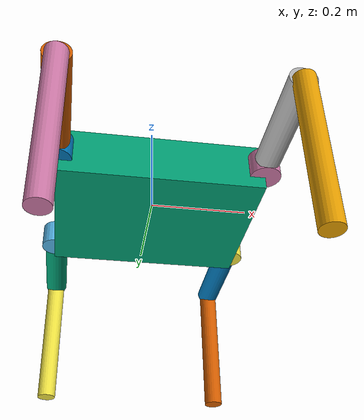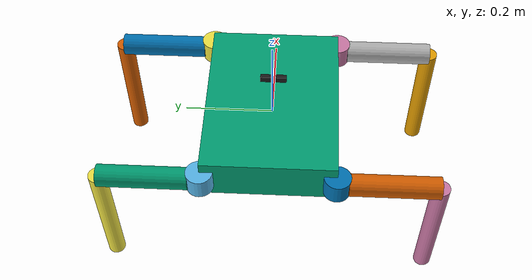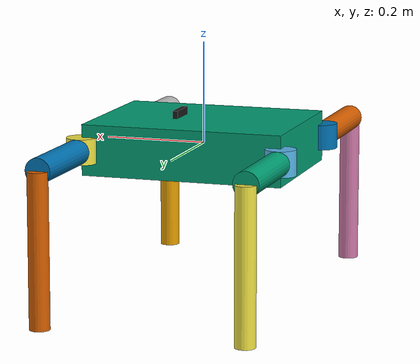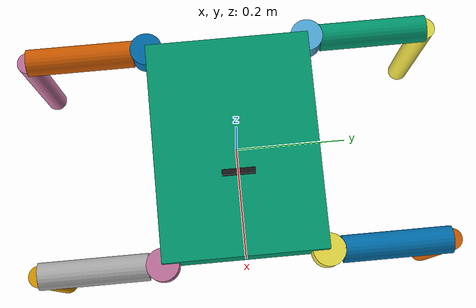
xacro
<?xml version="1.0" encoding="utf-8"?>

<robot xmlns:xacro="http://www.ros.org/wiki/xacro" name="spiderbytes_v5">
<xacro:arg name="ros2_control_yaml" default=""/>
<xacro:include filename="$(find spiderbytes)/urdf/accessories/camera.urdf" />
  <!-- ================= BASE ================= -->
  <link name="base_link">
    <visual>
      <geometry><box size="0.4 0.3 0.1"/></geometry>
    </visual>
    <collision>
      <geometry><box size="0.4 0.3 0.1"/></geometry>
    </collision>
    <inertial>
    <origin xyz="0 0 0"/>
    <mass value="5.0"/>
  <inertia
    ixx="0.0417"
    iyy="0.0708"
    izz="0.1042"
    ixy="0"
    ixz="0"
    iyz="0"/>
    </inertial>
</link>

  <!-- HIP -->
  <link name="hip_fl">
    <visual>
      <geometry><cylinder radius="0.03" length="0.05"/></geometry>
    </visual>
    <collision>
      <geometry><cylinder radius="0.03" length="0.05"/></geometry>
    </collision>
    <inertial>
  <origin xyz="0 0 0"/>
  <mass value="0.2"/>
  <inertia
    ixx="0.000061"
    iyy="0.000061"
    izz="0.000090"
    ixy="0"
    ixz="0"
    iyz="0"/>
</inertial>

  </link>

  <joint name="hip_joint_fl" type="revolute">
    <parent link="base_link"/>
    <child link="hip_fl"/>
    <origin xyz="0.2 0.15 0" rpy="0 0 1.5708"/>
    <axis xyz="0 0 1"/>
    <limit lower="-1.57" upper="1.57" effort="100" velocity="100"/>
  </joint>

  <!-- THIGH -->
  <link name="thigh_fl">
    <visual>
      <origin xyz="0.1 0 0" rpy="0 1.5708 0"/>
      <geometry><cylinder radius="0.025" length="0.2"/></geometry>
    </visual>
    <collision>
      <origin xyz="0.1 0 0"/>
      <geometry><cylinder radius="0.025" length="0.2"/></geometry>
    </collision>
<inertial>
  <origin xyz="0.1 0 0"/>
  <mass value="0.3"/>
  <inertia
    ixx="0.00105"
    iyy="0.00039"
    izz="0.00105"
    ixy="0"
    ixz="0"
    iyz="0"/>
</inertial>

  </link>

  <joint name="knee_joint_fl" type="revolute">
    <parent link="hip_fl"/>
    <child link="thigh_fl"/>
    <origin xyz="0.025 0 0"/>
    <axis xyz="0 1 0"/>
    <limit lower="-1.5708" upper="1.5708" effort="100" velocity="100"/>
  </joint>

  <!-- LEG -->
  <link name="leg_fl">
    <visual>
      <origin xyz="0 0 -0.15"/>
      <geometry><cylinder radius="0.02" length="0.3"/></geometry>
    </visual>
    <collision>
      <origin xyz="0 0 -0.15"/>
      <geometry><cylinder radius="0.02" length="0.3"/></geometry>
    </collision>
  <inertial>
  <origin xyz="0 0 -0.15"/>
  <mass value="0.25"/>
  <inertia
    ixx="0.00190"
    iyy="0.00190"
    izz="0.00005"
    ixy="0"
    ixz="0"
    iyz="0"/>
</inertial>

  </link>

  <joint name="leg_joint_fl" type="revolute">
    <parent link="thigh_fl"/>
    <child link="leg_fl"/>
    <origin xyz="0.2 0 0"/>
    <axis xyz="0 1 0"/>
    <limit lower="-1.5708" upper="1.5708" effort="100" velocity="100"/>
  </joint>

  <!-- FRONT RIGHT -->
  <joint name="hip_joint_fr" type="revolute">
    <parent link="base_link"/>
    <child link="hip_fr"/>
    <origin xyz="0.2 -0.15 0" rpy="0 0 -1.5708"/>
    <axis xyz="0 0 1"/>
    <limit lower="-1.5708" upper="1.5708" effort="100" velocity="100"/>
  </joint>
  <link name="hip_fr">
    <visual>
        <geometry>
            <cylinder radius="0.03" length="0.05"/>
        </geometry>
    </visual>
     <collision>
      <geometry><cylinder radius="0.03" length="0.05"/></geometry>
    </collision>
    <inertial>
  <origin xyz="0 0 0"/>
  <mass value="0.2"/>
  <inertia
    ixx="0.000061"
    iyy="0.000061"
    izz="0.000090"
    ixy="0"
    ixz="0"
    iyz="0"/>
</inertial>
    </link>

  <joint name="knee_joint_fr" type="revolute">
    <parent link="hip_fr"/>
    <child link="thigh_fr"/>
    <origin xyz="0.025 0 0"/>
    <axis xyz="0 1 0"/>
    <limit lower="-1.5708" upper="1.5708" effort="100" velocity="100"/>
  </joint>
  <link name="thigh_fr"><visual><origin xyz="0.1 0 0" rpy="0 1.5708 0"/><geometry><cylinder radius="0.025" length="0.2"/></geometry></visual>
   <collision>
      <origin xyz="0.1 0 0"/>
      <geometry><cylinder radius="0.025" length="0.2"/></geometry>
    </collision>
<inertial>
  <origin xyz="0.1 0 0"/>
  <mass value="0.3"/>
  <inertia
    ixx="0.00105"
    iyy="0.00039"
    izz="0.00105"
    ixy="0"
    ixz="0"
    iyz="0"/>
</inertial>
  </link>

  <joint name="leg_joint_fr" type="revolute">
    <parent link="thigh_fr"/>
    <child link="leg_fr"/>
    <origin xyz="0.2 0 0"/>
    <axis xyz="0 1 0"/>
    <limit lower="-1.5708" upper="1.5708" effort="100" velocity="100"/>
  </joint>
  <link name="leg_fr"><visual><origin xyz="0 0 -0.15"/><geometry><cylinder radius="0.02" length="0.3"/></geometry></visual>
    <collision>
      <origin xyz="0 0 -0.15"/>
      <geometry><cylinder radius="0.02" length="0.3"/></geometry>
    </collision>
  <inertial>
  <origin xyz="0 0 -0.15"/>
  <mass value="0.25"/>
  <inertia
    ixx="0.00190"
    iyy="0.00190"
    izz="0.00005"
    ixy="0"
    ixz="0"
    iyz="0"/>
</inertial>
  </link>

  <!-- REAR LEFT -->
  <joint name="hip_joint_rl" type="revolute">
    <parent link="base_link"/>
    <child link="hip_rl"/>
    <origin xyz="-0.2 0.15 0" rpy="0 0 1.5708"/>
    <axis xyz="0 0 1"/>
    <limit lower="-1.5708" upper="1.5708" effort="100" velocity="100"/>
  </joint>
  <link name="hip_rl"><visual><geometry><cylinder radius="0.03" length="0.05"/></geometry></visual>
   <collision>
      <geometry><cylinder radius="0.03" length="0.05"/></geometry>
    </collision>
    <inertial>
  <origin xyz="0 0 0"/>
  <mass value="0.2"/>
  <inertia
    ixx="0.000061"
    iyy="0.000061"
    izz="0.000090"
    ixy="0"
    ixz="0"
    iyz="0"/>
</inertial>
  </link>

  <joint name="knee_joint_rl" type="revolute">
    <parent link="hip_rl"/>
    <child link="thigh_rl"/>
    <origin xyz="0.025 0 0"/>
    <axis xyz="0 1 0"/>
    <limit lower="-1.5708" upper="1.5708" effort="100" velocity="100"/>
  </joint>
  <link name="thigh_rl"><visual><origin xyz="0.1 0 0" rpy="0 1.5708 0"/><geometry><cylinder radius="0.025" length="0.2"/></geometry></visual>
   <collision>
      <origin xyz="0.1 0 0"/>
      <geometry><cylinder radius="0.025" length="0.2"/></geometry>
    </collision>
<inertial>
  <origin xyz="0.1 0 0"/>
  <mass value="0.3"/>
  <inertia
    ixx="0.00105"
    iyy="0.00039"
    izz="0.00105"
    ixy="0"
    ixz="0"
    iyz="0"/>
</inertial>
  </link>

  <joint name="leg_joint_rl" type="revolute">
    <parent link="thigh_rl"/>
    <child link="leg_rl"/>
    <origin xyz="0.2 0 0"/>
    <axis xyz="0 1 0"/>
    <limit lower="-1.5708" upper="1.5708" effort="100" velocity="100"/>
  </joint>
  <link name="leg_rl"><visual><origin xyz="0 0 -0.15"/><geometry><cylinder radius="0.02" length="0.3"/></geometry></visual>
   <collision>
      <origin xyz="0 0 -0.15"/>
      <geometry><cylinder radius="0.02" length="0.3"/></geometry>
    </collision>
  <inertial>
  <origin xyz="0 0 -0.15"/>
  <mass value="0.25"/>
  <inertia
    ixx="0.00190"
    iyy="0.00190"
    izz="0.00005"
    ixy="0"
    ixz="0"
    iyz="0"/>
</inertial>
  </link>

  <!-- REAR RIGHT -->
  <joint name="hip_joint_rr" type="revolute">
    <parent link="base_link"/>
    <child link="hip_rr"/>
    <origin xyz="-0.2 -0.15 0" rpy="0 0 -1.5708"/>
    <axis xyz="0 0 1"/>
    <limit lower="-1.5708" upper="1.5708" effort="100" velocity="100"/>
  </joint>
  <link name="hip_rr"><visual><geometry><cylinder radius="0.03" length="0.05"/></geometry></visual>
    <collision>
      <geometry><cylinder radius="0.03" length="0.05"/></geometry>
    </collision>
    <inertial>
  <origin xyz="0 0 0"/>
  <mass value="0.2"/>
  <inertia
    ixx="0.000061"
    iyy="0.000061"
    izz="0.000090"
    ixy="0"
    ixz="0"
    iyz="0"/>
</inertial>
  </link>

  <joint name="knee_joint_rr" type="revolute">
    <parent link="hip_rr"/>
    <child link="thigh_rr"/>
    <origin xyz="0.025 0 0"/>
    <axis xyz="0 1 0"/>
    <limit lower="-1.5708" upper="1.5708" effort="100" velocity="100"/>
  </joint>
  <link name="thigh_rr"><visual><origin xyz="0.1 0 0" rpy="0 1.5708 0"/><geometry><cylinder radius="0.025" length="0.2"/></geometry></visual>
   <collision>
      <origin xyz="0.1 0 0"/>
      <geometry><cylinder radius="0.025" length="0.2"/></geometry>
    </collision>
<inertial>
  <origin xyz="0.1 0 0"/>
  <mass value="0.3"/>
  <inertia
    ixx="0.00105"
    iyy="0.00039"
    izz="0.00105"
    ixy="0"
    ixz="0"
    iyz="0"/>
</inertial>
  </link>

  <joint name="leg_joint_rr" type="revolute">
    <parent link="thigh_rr"/>
    <child link="leg_rr"/>
    <origin xyz="0.2 0 0"/>
    <axis xyz="0 1 0"/>
    <limit lower="-1.5708" upper="1.5708" effort="100" velocity="100"/>
  </joint>
  <link name="leg_rr"><visual><origin xyz="0 0 -0.15"/><geometry><cylinder radius="0.02" length="0.3"/></geometry></visual>
    <collision>
      <origin xyz="0 0 -0.15"/>
      <geometry><cylinder radius="0.02" length="0.3"/></geometry>
    </collision>
  <inertial>
  <origin xyz="0 0 -0.15"/>
  <mass value="0.25"/>
  <inertia
    ixx="0.00190"
    iyy="0.00190"
    izz="0.00005"
    ixy="0"
    ixz="0"
    iyz="0"/>
</inertial>
  </link>

  <gazebo reference="leg_fl"><mu1>1.2</mu1><mu2>1.2</mu2></gazebo>
  <gazebo reference="leg_fr"><mu1>1.2</mu1><mu2>1.2</mu2></gazebo>
  <gazebo reference="leg_rr"><mu1>1.2</mu1><mu2>1.2</mu2></gazebo>
  <gazebo reference="leg_rr"><mu1>1.2</mu1><mu2>1.2</mu2></gazebo>

  <ros2_control name="spiderbytes_system" type="system">
    <hardware>
      <plugin>gz_ros2_control/GazeboSimSystem</plugin>
    </hardware>

    <joint name="hip_joint_fl"><command_interface name="position"/><state_interface name="position"/><state_interface name="velocity"/></joint>
    <joint name="hip_joint_fr"><command_interface name="position"/><state_interface name="position"/><state_interface name="velocity"/></joint>
    <joint name="hip_joint_rr"><command_interface name="position"/><state_interface name="position"/><state_interface name="velocity"/></joint>
    <joint name="hip_joint_rl"><command_interface name="position"/><state_interface name="position"/><state_interface name="velocity"/></joint>

    <joint name="knee_joint_fl"><command_interface name="position"/><state_interface name="position"/><state_interface name="velocity"/></joint>
    <joint name="knee_joint_fr"><command_interface name="position"/><state_interface name="position"/><state_interface name="velocity"/></joint>
    <joint name="knee_joint_rr"><command_interface name="position"/><state_interface name="position"/><state_interface name="velocity"/></joint>
    <joint name="knee_joint_rl"><command_interface name="position"/><state_interface name="position"/><state_interface name="velocity"/></joint>

    <joint name="leg_joint_rr"><command_interface name="position"/><state_interface name="position"/><state_interface name="velocity"/></joint>
    <joint name="leg_joint_rl"><command_interface name="position"/><state_interface name="position"/><state_interface name="velocity"/></joint>
    <joint name="leg_joint_fr"><command_interface name="position"/><state_interface name="position"/><state_interface name="velocity"/></joint>
    <joint name="leg_joint_fl"><command_interface name="position"/><state_interface name="position"/><state_interface name="velocity"/></joint>
  </ros2_control>
  <gazebo>
    <plugin filename="gz_ros2_control-system" name="gz_ros2_control::GazeboSimROS2ControlPlugin">
      <parameters>$(arg ros2_control_yaml)</parameters>
    </plugin>
  </gazebo>
</robot>

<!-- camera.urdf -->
<robot xmlns:xacro="http://www.ros.org/wiki/xacro" name="spider_camera">
    <xacro:property name="wheel_x_offset" value="0.05" />

      <link name="camera_link">
        <inertial>
          <origin xyz="0 0 0" rpy="0 0 0"/>
          <mass value="0.01"/>
          <inertia ixx="1e-6" ixy="0" ixz="0" iyy="1e-6" iyz="0" izz="1e-6"/>
        </inertial>

        <visual>
          <origin xyz="0 0 0" rpy="1.5708 0 1.5708"/>
          <geometry>
            <box size="0.06 0.03 0.01"/>
          </geometry>
          <material name="black">
            <color rgba="0.1 0.1 0.1 1.0"/>
          </material>
        </visual>

        <collision>
          <origin xyz="0 0 0" rpy="1.5708 0 1.5708"/>
          <geometry>
            <box size="0.03 0.03 0.02"/>
          </geometry>
        </collision>
      </link>

    <!-- Joint from head to camera - mounted at front of head -->
    <joint name="camera_joint" type="fixed">
      <origin xyz="${wheel_x_offset} 0 0.05" rpy="0 0 0"/>
      <parent link="base_link"/>
      <child link="camera_link"/>
    </joint>

    <joint name="camera_optical_joint" type="fixed">
        <origin xyz="0 0.0 0.0" rpy="1.5708 0 1.5708" />
        <parent link="camera_link" />
        <child link="camera_link_optical" />
    </joint>

  <link name="camera_link_optical"></link>
 <gazebo reference="camera_link">
      <sensor name="camera" type="camera">
        <pose>0 0 0 0 0 0</pose>
        <always_on>1</always_on>
        <topic>camera</topic>
        <visualize>true</visualize>
        <update_rate>10</update_rate>
        <camera>
          <horizontal_fov>1.745</horizontal_fov>
          <image>
            <format>R8G8B8</format>
            <width>1280</width>
            <height>720</height>
          </image>
          <clip>
            <near>0.05</near>
            <far>10.0</far>
          </clip>
        </camera>
      </sensor>
  </gazebo>
 <gazebo>
        <plugin filename="libignition-gazebo-sensors-system.so" name="ignition::gazebo::systems::Sensors">
            <render_engine>ogre2</render_engine>
        </plugin>
    </gazebo>
</robot>
